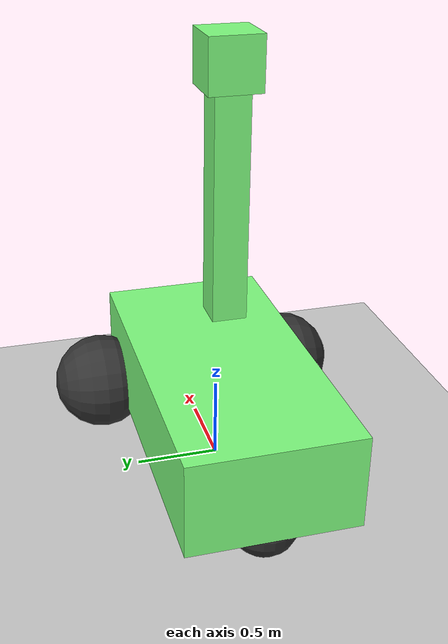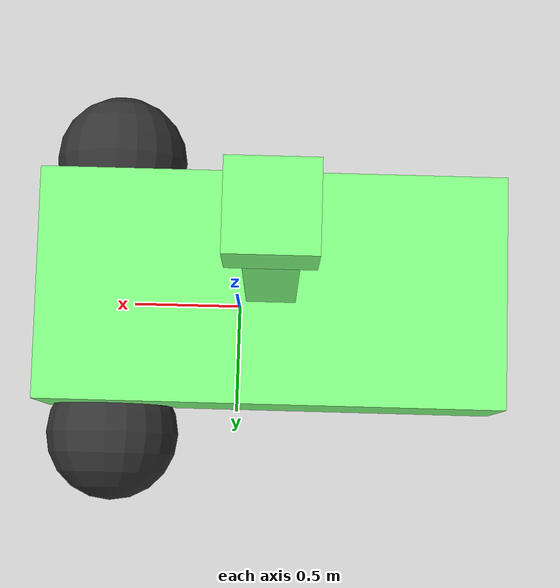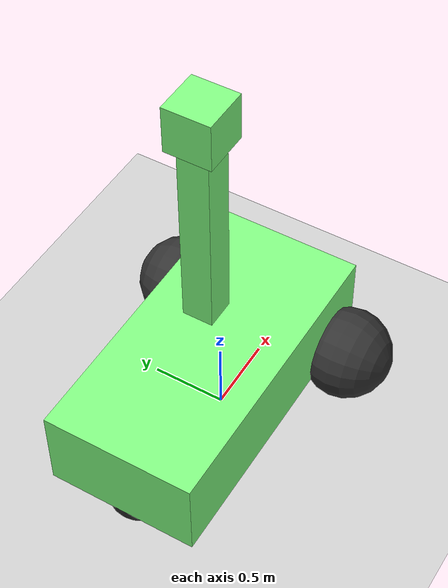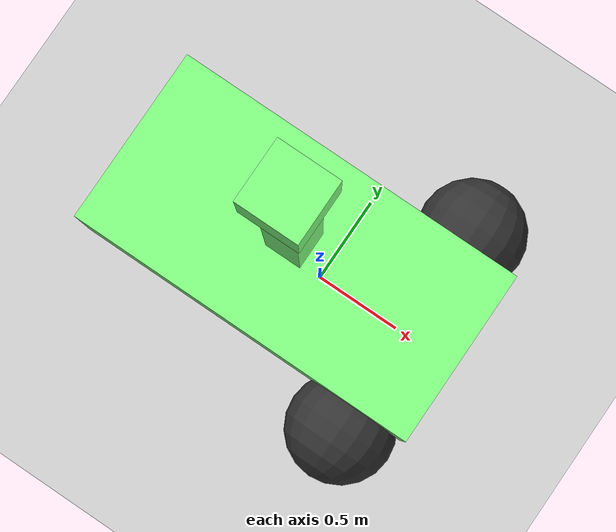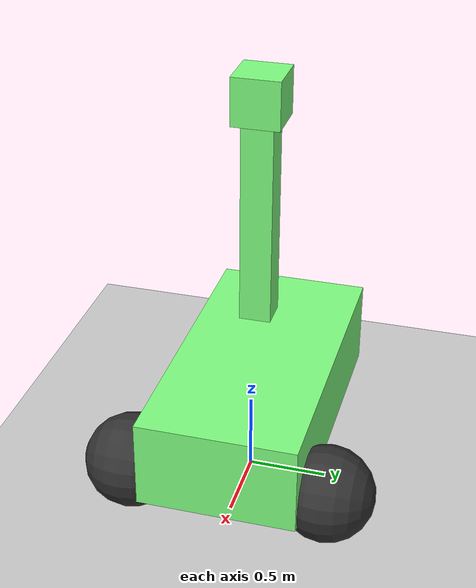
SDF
<?xml version="1.0" ?>
<!--
  This is a simple cart-pole world that demonstrates the use of Gazebo for
  RL. To check it out in action follow the instructions in the readme.
-->
<sdf version="1.6">
  <world name="cart_pole">

    <physics name="1ms" type="ignored">
      <max_step_size>0.001</max_step_size>
      <real_time_factor>1.0</real_time_factor>
    </physics>
    <plugin
      filename="gz-sim-physics-system"
      name="gz::sim::systems::Physics">
    </plugin>
    <plugin
      filename="gz-sim-user-commands-system"
      name="gz::sim::systems::UserCommands">
    </plugin>
    <plugin
      filename="gz-sim-scene-broadcaster-system"
      name="gz::sim::systems::SceneBroadcaster">
    </plugin>

    <gui fullscreen="0">
      <plugin filename="MinimalScene" name="3D View">
        <gz-gui>
          <title>3D View</title>
          <property type="bool" key="showTitleBar">false</property>
          <property type="string" key="state">docked</property>
        </gz-gui>
        <engine>ogre2</engine>
        <scene>scene</scene>
        <ambient_light>0.4 0.4 0.4</ambient_light>
        <background_color>0.8 0.8 0.8</background_color>
        <!-- set default user camera pose -->
        <camera_pose>0 6 3 0 0 -1.57</camera_pose>
      </plugin>
    </gui>

    <light type="directional" name="sun">
      <cast_shadows>true</cast_shadows>
      <pose>0 0 10 0 0 0</pose>
      <diffuse>1 1 1 1</diffuse>
      <specular>0.5 0.5 0.5 1</specular>
      <attenuation>
        <range>1000</range>
        <constant>0.9</constant>
        <linear>0.01</linear>
        <quadratic>0.001</quadratic>
      </attenuation>
      <direction>-0.5 0.1 -0.9</direction>
    </light>

    <model name="ground_plane">
      <static>true</static>
      <link name="link">
        <collision name="collision">
          <geometry>
            <plane>
              <normal>0 0 1</normal>
              <size>100 100</size>
            </plane>
          </geometry>
        </collision>
        <visual name="visual">
          <geometry>
            <plane>
              <normal>0 0 1</normal>
              <size>100 100</size>
            </plane>
          </geometry>
          <material>
            <ambient>0.8 0.8 0.8 1</ambient>
            <diffuse>0.8 0.8 0.8 1</diffuse>
            <specular>0.8 0.8 0.8 1</specular>
          </material>
        </visual>
      </link>
    </model>

    <model name='vehicle_green'>
      <pose>0 0 0.325 0 -0 0</pose>

      <link name='pole'>
        <pose>-0.151427 -0 1.5 0 -0 0</pose>
        <inertial>
          <mass>0.1</mass>
          <inertia>
            <ixx>0.126164</ixx>
            <ixy>0</ixy>
            <ixz>0</ixz>
            <iyy>0.416519</iyy>
            <iyz>0</iyz>
            <izz>0.481014</izz>
          </inertia>
        </inertial>
        <visual name='visual'>
          <geometry>
            <box>
              <size>0.2 0.2 1.5</size>
            </box>
          </geometry>
          <material>
            <ambient>0.5 1.0 0.5 1</ambient>
            <diffuse>0.5 1.0 0.5 1</diffuse>
            <specular>0.0 1.0 0.0 1</specular>
          </material>
        </visual>
        <collision name='collision'>
          <geometry>
            <box>
              <size>0.2 0.2 1.5</size>
            </box>
          </geometry>
        </collision>
      </link>

      <link name='pole_mass'>
        <pose>-0.151427 0 2.2 0 -0 0</pose>
        <inertial>
          <mass>10.0</mass>
          <inertia>
            <ixx>1.26164</ixx>
            <ixy>0</ixy>
            <ixz>0</ixz>
            <iyy>4.16519</iyy>
            <iyz>0</iyz>
            <izz>4.81014</izz>
          </inertia>
        </inertial>
        <visual name='visual'>
          <geometry>
            <box>
              <size>0.3 0.3 0.3</size>
            </box>
          </geometry>
          <material>
            <ambient>0.5 1.0 0.5 1</ambient>
            <diffuse>0.5 1.0 0.5 1</diffuse>
            <specular>0.0 1.0 0.0 1</specular>
          </material>
        </visual>
        <collision name='collision'>
          <geometry>
            <box>
              <size>0.3 0.3 0.3</size>
            </box>
          </geometry>
        </collision>
      </link>

      <link name='chassis'>
        <pose>-0.151427 -0 0.175 0 -0 0</pose>
        <inertial>
          <mass>1.14395</mass>
          <inertia>
            <ixx>0.126164</ixx>
            <ixy>0</ixy>
            <ixz>0</ixz>
            <iyy>0.416519</iyy>
            <iyz>0</iyz>
            <izz>0.481014</izz>
          </inertia>
        </inertial>
        <visual name='visual'>
          <geometry>
            <box>
              <size>2.01142 1 0.568726</size>
            </box>
          </geometry>
          <material>
            <ambient>0.5 1.0 0.5 1</ambient>
            <diffuse>0.5 1.0 0.5 1</diffuse>
            <specular>0.0 1.0 0.0 1</specular>
          </material>
        </visual>
        <collision name='collision'>
          <geometry>
            <box>
              <size>2.01142 1 0.568726</size>
            </box>
          </geometry>
        </collision>
      </link>

      <link name='left_wheel'>
        <pose>0.554283 0.625029 -0.025 -1.5707 0 0</pose>
        <inertial>
          <mass>2</mass>
          <inertia>
            <ixx>0.145833</ixx>
            <ixy>0</ixy>
            <ixz>0</ixz>
            <iyy>0.145833</iyy>
            <iyz>0</iyz>
            <izz>0.125</izz>
          </inertia>
        </inertial>
        <visual name='visual'>
          <geometry>
            <sphere>
              <radius>0.3</radius>
            </sphere>
          </geometry>
          <material>
            <ambient>0.2 0.2 0.2 1</ambient>
            <diffuse>0.2 0.2 0.2 1</diffuse>
            <specular>0.2 0.2 0.2 1</specular>
          </material>
        </visual>
        <collision name='collision'>
          <geometry>
            <sphere>
              <radius>0.3</radius>
            </sphere>
          </geometry>
          <surface>
            <friction>
              <ode>
                <mu>1</mu>
                <mu2>1</mu2>
                <slip1>0.035</slip1>
                <slip2>0</slip2>
                <fdir1>0 0 1</fdir1>
              </ode>
              <bullet>
                <friction>1</friction>
                <friction2>1</friction2>
                <rolling_friction>0.1</rolling_friction>
              </bullet>
            </friction>
          </surface>
        </collision>
      </link>

      <link name='right_wheel'>
        <pose>0.554282 -0.625029 -0.025 -1.5707 0 0</pose>
        <inertial>
          <mass>2</mass>
          <inertia>
            <ixx>0.145833</ixx>
            <ixy>0</ixy>
            <ixz>0</ixz>
            <iyy>0.145833</iyy>
            <iyz>0</iyz>
            <izz>0.125</izz>
          </inertia>
        </inertial>
        <visual name='visual'>
          <geometry>
            <sphere>
              <radius>0.3</radius>
            </sphere>
          </geometry>
          <material>
            <ambient>0.2 0.2 0.2 1</ambient>
            <diffuse>0.2 0.2 0.2 1</diffuse>
            <specular>0.2 0.2 0.2 1</specular>
          </material>
        </visual>
        <collision name='collision'>
          <geometry>
            <sphere>
              <radius>0.3</radius>
            </sphere>
          </geometry>
          <surface>
            <friction>
              <ode>
                <mu>1</mu>
                <mu2>1</mu2>
                <slip1>0.035</slip1>
                <slip2>0</slip2>
                <fdir1>0 0 1</fdir1>
              </ode>
              <bullet>
                <friction>1</friction>
                <friction2>1</friction2>
                <rolling_friction>0.1</rolling_friction>
              </bullet>
            </friction>
          </surface>
        </collision>
      </link>

      <link name='caster'>
        <pose>-0.957138 -0 -0.125 0 -0 0</pose>
        <inertial>
          <mass>1</mass>
          <inertia>
            <ixx>0.1</ixx>
            <ixy>0</ixy>
            <ixz>0</ixz>
            <iyy>0.1</iyy>
            <iyz>0</iyz>
            <izz>0.1</izz>
          </inertia>
        </inertial>
        <visual name='visual'>
          <geometry>
            <sphere>
              <radius>0.2</radius>
            </sphere>
          </geometry>
          <material>
            <ambient>0.2 0.2 0.2 1</ambient>
            <diffuse>0.2 0.2 0.2 1</diffuse>
            <specular>0.2 0.2 0.2 1</specular>
          </material>
        </visual>
        <collision name='collision'>
          <geometry>
            <sphere>
              <radius>0.2</radius>
            </sphere>
          </geometry>
        </collision>
      </link>

      <joint name='left_wheel_joint' type='revolute'>
        <parent>chassis</parent>
        <child>left_wheel</child>
        <axis>
          <xyz>0 0 1</xyz>
          <limit>
            <lower>-1.79769e+308</lower>
            <upper>1.79769e+308</upper>
          </limit>
        </axis>
      </joint>

      <joint name='right_wheel_joint' type='revolute'>
        <parent>chassis</parent>
        <child>right_wheel</child>
        <axis>
          <xyz>0 0 1</xyz>
          <limit>
            <lower>-1.79769e+308</lower>
            <upper>1.79769e+308</upper>
          </limit>
        </axis>
      </joint>

      <joint name='caster_wheel' type='ball'>
        <parent>chassis</parent>
        <child>caster</child>
      </joint>

      <joint name='pole_joint' type='revolute'>
        <pose>0 0 -0.75 0 0 0</pose>
        <parent>chassis</parent>
        <child>pole</child>
        <axis>
          <xyz>0 1 0</xyz>
          <limit>
            <lower>-1.79769e+308</lower>
            <upper>1.79769e+308</upper>
          </limit>
        </axis>
      </joint>

      <joint name='top_weight' type='fixed'>
        <parent>pole</parent>
        <child>pole_mass</child>
      </joint>

    </model>

  </world>
</sdf>
